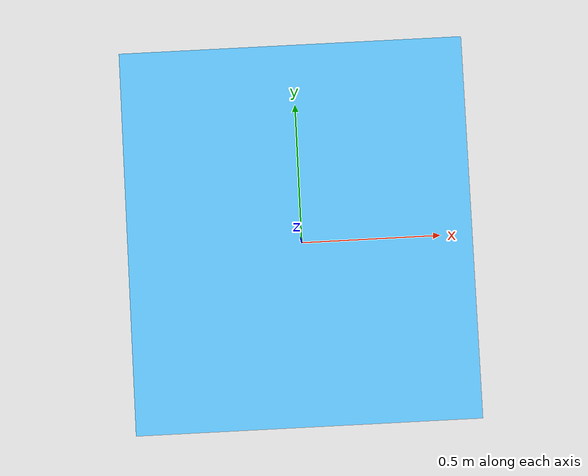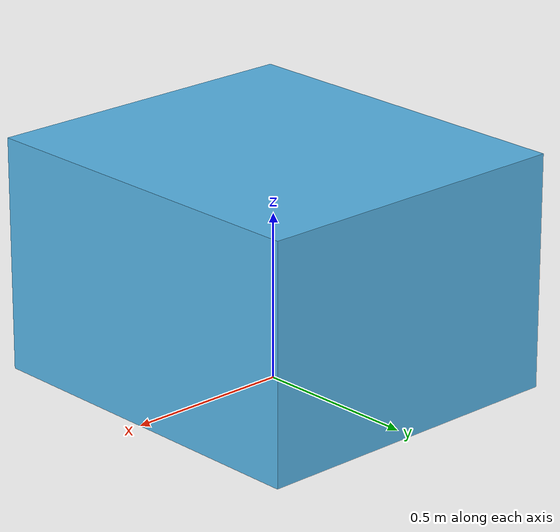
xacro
<?xml version="1.0"?>
<robot xmlns:xacro="http://ros.org/wiki/xacro" name="table" >

  <!-- for simulation -->
  <xacro:include filename="$(find panda_table_description)/urdf/table.gazebo.xacro"/>
  <!-- end for simulation -->

  <link name="world" />

  <link name="table">
    <inertial>
      <mass value="200.0"/>
      <inertia ixx="10.0" ixy="0" ixz="0" iyy="10.0" iyz="0" izz="10.0" />
      <origin/>
    </inertial>
    <visual>
      <geometry>
	    <box size="1.0 1.11 0.7" />
      </geometry>
      <origin rpy="0 0 0" xyz="0 0 0.35" />
    </visual>
    <collision>
      <geometry>
	    <box size="1.0 1.11 0.7" />
      </geometry>
      <origin rpy="0 0 0" xyz="0 0 0.35" />
    </collision>
   </link>

  <joint name="world_joint" type="fixed">
    <parent link="world" />
    <child link = "table" />
    <origin xyz="0.0 0.0 0.0" rpy="0.0 0.0 0.0" />
  </joint>

</robot>
